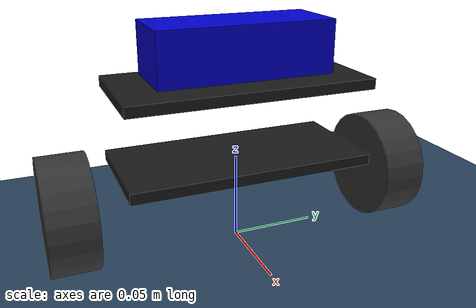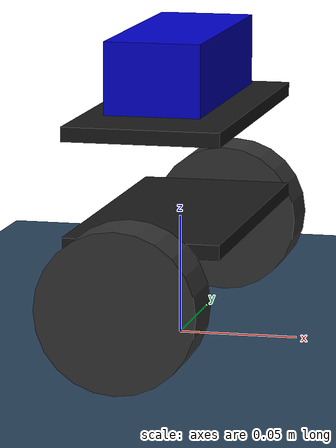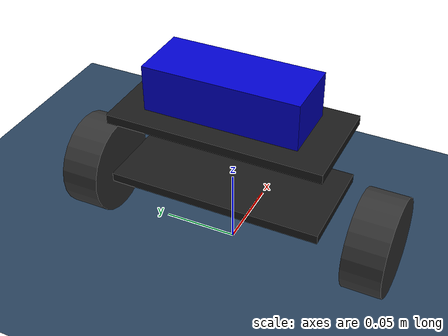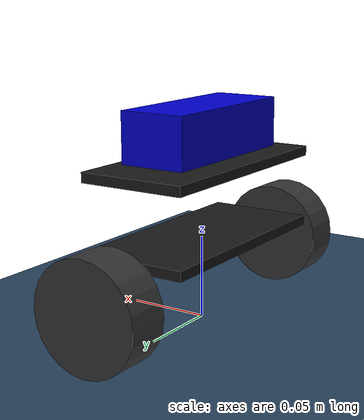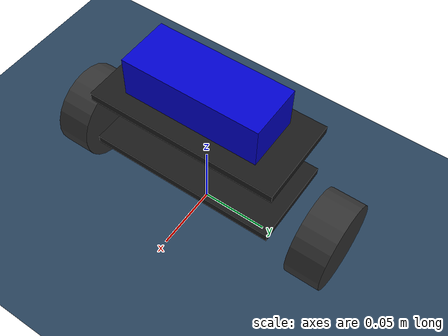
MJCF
<mujoco model="hshop_balancing_robot">
    <compiler angle="degree" coordinate="local" inertiafromgeom="true"/>
    <option integrator="RK4" timestep="0.002"/> <asset>
        <texture name="grid" type="2d" builtin="checker" rgb1=".1 .2 .3" rgb2=".2 .3 .4" width="300" height="300"/>
        <material name="grid" texture="grid" texrepeat="10 10"/>
    </asset>

    <worldbody>
        <light diffuse=".5 .5 .5" pos="0 0 3" dir="0 0 -1"/>
        <geom name="floor" type="plane" size="5 5 0.1" material="grid" friction="1 0.05 0.01"/>

        <body name="chassis" pos="0 0 0.05">
            <joint name="root" type="free"/>
            <geom name="base_plate" type="box" size="0.0325 0.07 0.003" rgba="0.1 0.1 0.1 1"/>
            <inertial pos="0 0 0.02" mass="0.25" diaginertia="0.0005 0.0005 0.0005"/>

            <body name="top_tier" pos="0 0 0.045">
                <geom name="top_plate" type="box" size="0.0325 0.07 0.003" rgba="0.1 0.1 0.1 1"/>
                <geom name="battery" type="box" size="0.02 0.05 0.015" pos="0 0 0.02" rgba="0 0 0.8 1"/>
                <inertial pos="0 0 0.02" mass="0.45" diaginertia="0.001 0.001 0.001"/>
            </body>

            <body name="left_wheel" pos="0 0.098 -0.0175">
                <joint name="left_wheel_joint" type="hinge" axis="0 1 0"/>
                <geom name="left_wheel_geom" type="cylinder" size="0.0325 0.013" rgba="0.2 0.2 0.2 1"
                      quat="0.707 0.707 0 0" friction="1.5 0.01 0.001" solref="0.01 1" solimp="0.9 0.95 0.001"/>
            </body>

            <body name="right_wheel" pos="0 -0.098 -0.0175">
                <joint name="right_wheel_joint" type="hinge" axis="0 1 0"/>
                <geom name="right_wheel_geom" type="cylinder" size="0.0325 0.013" rgba="0.2 0.2 0.2 1"
                      quat="0.707 0.707 0 0" friction="1.5 0.01 0.001" solref="0.01 1" solimp="0.9 0.95 0.001"/>
            </body>
        </body>
    </worldbody>

    <actuator>
        <motor name="left_motor" joint="left_wheel_joint" gear="0.2" ctrllimited="true" ctrlrange="-1 1"/>
        <motor name="right_motor" joint="right_wheel_joint" gear="0.2" ctrllimited="true" ctrlrange="-1 1"/>
    </actuator>
</mujoco>
